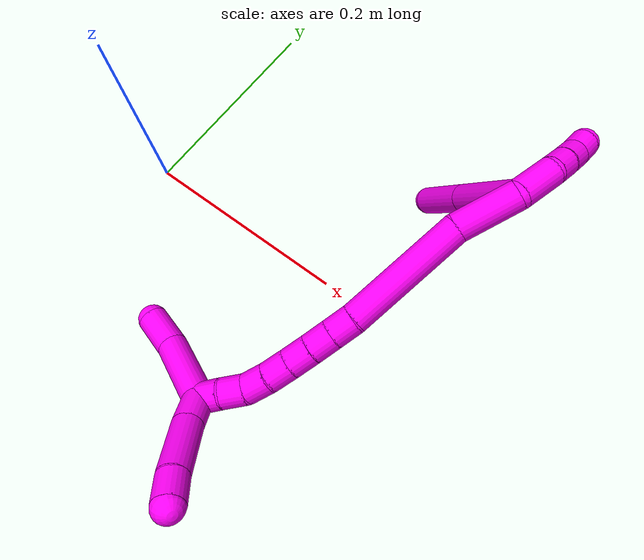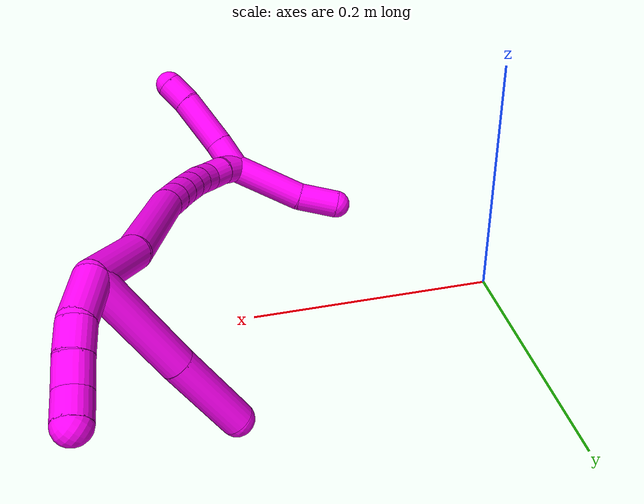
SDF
<sdf version="1.7">
 <world name="default">
  <model name="10">
   <static>0</static>
   <link name="10">
    <collision name="collision-cylinder-e_1_2_8">
     <pose>0.010665 8e-05 -0.040773 -3.13963 0.255831 -3.12632</pose>
     <geometry><cylinder><radius>0.0125</radius><length>0.084289</length></cylinder></geometry>
     <surface>
      <friction><ode><mu>1.16</mu><mu2>1.16</mu2><slip1>0</slip1><slip2>0</slip2></ode></friction>
      <contact><ode><kp>1e+06</kp><kd>1</kd><max_vel>0</max_vel><min_depth>0.001</min_depth></ode></contact>
     </surface>
    </collision>
    <visual name="visual-cylinder-e_1_2_8">
     <pose>0.010665 8e-05 -0.040773 -3.13963 0.255831 -3.12632</pose>
     <geometry><cylinder><radius>0.0125</radius><length>0.084289</length></cylinder></geometry>
     <material><ambient>1 0 0.964706 1</ambient></material>
    </visual>
    <collision name="collision-cylinder-e_2_8_6">
     <pose>0.029182 -0.000834 -0.113433 3.11042 0.241329 2.88591</pose>
     <geometry><cylinder><radius>0.0125</radius><length>0.065711</length></cylinder></geometry>
     <surface>
      <friction><ode><mu>1.16</mu><mu2>1.16</mu2><slip1>0</slip1><slip2>0</slip2></ode></friction>
      <contact><ode><kp>1e+06</kp><kd>1</kd><max_vel>0</max_vel><min_depth>0.001</min_depth></ode></contact>
     </surface>
    </collision>
    <visual name="visual-cylinder-e_2_8_6">
     <pose>0.029182 -0.000834 -0.113433 3.11042 0.241329 2.88591</pose>
     <geometry><cylinder><radius>0.0125</radius><length>0.065711</length></cylinder></geometry>
     <material><ambient>1 0 0.964706 1</ambient></material>
    </visual>
    <collision name="collision-cylinder-e_1_2_9">
     <pose>0.000157 0.018512 -0.001058 -1.62789 0.008461 -0.008958</pose>
     <geometry><cylinder><radius>0.0125</radius><length>0.037086</length></cylinder></geometry>
     <surface>
      <friction><ode><mu>1.16</mu><mu2>1.16</mu2><slip1>0</slip1><slip2>0</slip2></ode></friction>
      <contact><ode><kp>1e+06</kp><kd>1</kd><max_vel>0</max_vel><min_depth>0.001</min_depth></ode></contact>
     </surface>
    </collision>
    <visual name="visual-cylinder-e_1_2_9">
     <pose>0.000157 0.018512 -0.001058 -1.62789 0.008461 -0.008958</pose>
     <geometry><cylinder><radius>0.0125</radius><length>0.037086</length></cylinder></geometry>
     <material><ambient>1 0 0.964706 1</ambient></material>
    </visual>
    <collision name="collision-cylinder-e_2_9_10">
     <pose>0.002102 0.046864 -0.005808 -1.92973 0.168518 -0.242596</pose>
     <geometry><cylinder><radius>0.0125</radius><length>0.02132</length></cylinder></geometry>
     <surface>
      <friction><ode><mu>1.16</mu><mu2>1.16</mu2><slip1>0</slip1><slip2>0</slip2></ode></friction>
      <contact><ode><kp>1e+06</kp><kd>1</kd><max_vel>0</max_vel><min_depth>0.001</min_depth></ode></contact>
     </surface>
    </collision>
    <visual name="visual-cylinder-e_2_9_10">
     <pose>0.002102 0.046864 -0.005808 -1.92973 0.168518 -0.242596</pose>
     <geometry><cylinder><radius>0.0125</radius><length>0.02132</length></cylinder></geometry>
     <material><ambient>1 0 0.964706 1</ambient></material>
    </visual>
    <collision name="collision-cylinder-e_3_10_11">
     <pose>0.006033 0.066227 -0.014084 -2.01941 0.200035 -0.316681</pose>
     <geometry><cylinder><radius>0.0125</radius><length>0.02157</length></cylinder></geometry>
     <surface>
      <friction><ode><mu>1.16</mu><mu2>1.16</mu2><slip1>0</slip1><slip2>0</slip2></ode></friction>
      <contact><ode><kp>1e+06</kp><kd>1</kd><max_vel>0</max_vel><min_depth>0.001</min_depth></ode></contact>
     </surface>
    </collision>
    <visual name="visual-cylinder-e_3_10_11">
     <pose>0.006033 0.066227 -0.014084 -2.01941 0.200035 -0.316681</pose>
     <geometry><cylinder><radius>0.0125</radius><length>0.02157</length></cylinder></geometry>
     <material><ambient>1 0 0.964706 1</ambient></material>
    </visual>
    <collision name="collision-cylinder-e_4_11_5">
     <pose>0.008584 0.085191 -0.021977 -1.90789 0.040757 -0.057464</pose>
     <geometry><cylinder><radius>0.0125</radius><length>0.020024</length></cylinder></geometry>
     <surface>
      <friction><ode><mu>1.16</mu><mu2>1.16</mu2><slip1>0</slip1><slip2>0</slip2></ode></friction>
      <contact><ode><kp>1e+06</kp><kd>1</kd><max_vel>0</max_vel><min_depth>0.001</min_depth></ode></contact>
     </surface>
    </collision>
    <visual name="visual-cylinder-e_4_11_5">
     <pose>0.008584 0.085191 -0.021977 -1.90789 0.040757 -0.057464</pose>
     <geometry><cylinder><radius>0.0125</radius><length>0.020024</length></cylinder></geometry>
     <material><ambient>1 0 0.964706 1</ambient></material>
    </visual>
    <collision name="collision-cylinder-e_1_2_12">
     <pose>0.003143 -0.024612 -0.010454 1.97247 0.117013 0.176577</pose>
     <geometry><cylinder><radius>0.0125</radius><length>0.053849</length></cylinder></geometry>
     <surface>
      <friction><ode><mu>1.16</mu><mu2>1.16</mu2><slip1>0</slip1><slip2>0</slip2></ode></friction>
      <contact><ode><kp>1e+06</kp><kd>1</kd><max_vel>0</max_vel><min_depth>0.001</min_depth></ode></contact>
     </surface>
    </collision>
    <visual name="visual-cylinder-e_1_2_12">
     <pose>0.003143 -0.024612 -0.010454 1.97247 0.117013 0.176577</pose>
     <geometry><cylinder><radius>0.0125</radius><length>0.053849</length></cylinder></geometry>
     <material><ambient>1 0 0.964706 1</ambient></material>
    </visual>
    <collision name="collision-cylinder-e_2_12_13">
     <pose>0.020211 -0.09898 -0.030644 1.76402 0.26804 0.324648</pose>
     <geometry><cylinder><radius>0.0125</radius><length>0.105153</length></cylinder></geometry>
     <surface>
      <friction><ode><mu>1.16</mu><mu2>1.16</mu2><slip1>0</slip1><slip2>0</slip2></ode></friction>
      <contact><ode><kp>1e+06</kp><kd>1</kd><max_vel>0</max_vel><min_depth>0.001</min_depth></ode></contact>
     </surface>
    </collision>
    <visual name="visual-cylinder-e_2_12_13">
     <pose>0.020211 -0.09898 -0.030644 1.76402 0.26804 0.324648</pose>
     <geometry><cylinder><radius>0.0125</radius><length>0.105153</length></cylinder></geometry>
     <material><ambient>1 0 0.964706 1</ambient></material>
    </visual>
    <collision name="collision-cylinder-e_3_13_14">
     <pose>0.036282 -0.158307 -0.043402 1.87666 0.210642 0.286501</pose>
     <geometry><cylinder><radius>0.0125</radius><length>0.020528</length></cylinder></geometry>
     <surface>
      <friction><ode><mu>1.16</mu><mu2>1.16</mu2><slip1>0</slip1><slip2>0</slip2></ode></friction>
      <contact><ode><kp>1e+06</kp><kd>1</kd><max_vel>0</max_vel><min_depth>0.001</min_depth></ode></contact>
     </surface>
    </collision>
    <visual name="visual-cylinder-e_3_13_14">
     <pose>0.036282 -0.158307 -0.043402 1.87666 0.210642 0.286501</pose>
     <geometry><cylinder><radius>0.0125</radius><length>0.020528</length></cylinder></geometry>
     <material><ambient>1 0 0.964706 1</ambient></material>
    </visual>
    <collision name="collision-cylinder-e_4_14_15">
     <pose>0.040475 -0.177234 -0.049339 1.87278 0.205971 0.279063</pose>
     <geometry><cylinder><radius>0.0125</radius><length>0.020023</length></cylinder></geometry>
     <surface>
      <friction><ode><mu>1.16</mu><mu2>1.16</mu2><slip1>0</slip1><slip2>0</slip2></ode></friction>
      <contact><ode><kp>1e+06</kp><kd>1</kd><max_vel>0</max_vel><min_depth>0.001</min_depth></ode></contact>
     </surface>
    </collision>
    <visual name="visual-cylinder-e_4_14_15">
     <pose>0.040475 -0.177234 -0.049339 1.87278 0.205971 0.279063</pose>
     <geometry><cylinder><radius>0.0125</radius><length>0.020023</length></cylinder></geometry>
     <material><ambient>1 0 0.964706 1</ambient></material>
    </visual>
    <collision name="collision-cylinder-e_5_15_16">
     <pose>0.044557 -0.195867 -0.055475 1.90509 0.204209 0.286138</pose>
     <geometry><cylinder><radius>0.0125</radius><length>0.020057</length></cylinder></geometry>
     <surface>
      <friction><ode><mu>1.16</mu><mu2>1.16</mu2><slip1>0</slip1><slip2>0</slip2></ode></friction>
      <contact><ode><kp>1e+06</kp><kd>1</kd><max_vel>0</max_vel><min_depth>0.001</min_depth></ode></contact>
     </surface>
    </collision>
    <visual name="visual-cylinder-e_5_15_16">
     <pose>0.044557 -0.195867 -0.055475 1.90509 0.204209 0.286138</pose>
     <geometry><cylinder><radius>0.0125</radius><length>0.020057</length></cylinder></geometry>
     <material><ambient>1 0 0.964706 1</ambient></material>
    </visual>
    <collision name="collision-cylinder-e_6_16_17">
     <pose>0.048459 -0.214452 -0.062006 1.91236 0.186916 0.264052</pose>
     <geometry><cylinder><radius>0.0125</radius><length>0.020107</length></cylinder></geometry>
     <surface>
      <friction><ode><mu>1.16</mu><mu2>1.16</mu2><slip1>0</slip1><slip2>0</slip2></ode></friction>
      <contact><ode><kp>1e+06</kp><kd>1</kd><max_vel>0</max_vel><min_depth>0.001</min_depth></ode></contact>
     </surface>
    </collision>
    <visual name="visual-cylinder-e_6_16_17">
     <pose>0.048459 -0.214452 -0.062006 1.91236 0.186916 0.264052</pose>
     <geometry><cylinder><radius>0.0125</radius><length>0.020107</length></cylinder></geometry>
     <material><ambient>1 0 0.964706 1</ambient></material>
    </visual>
    <collision name="collision-cylinder-e_7_17_18">
     <pose>0.051815 -0.232788 -0.069686 2.02169 0.147282 0.234291</pose>
     <geometry><cylinder><radius>0.0125</radius><length>0.020282</length></cylinder></geometry>
     <surface>
      <friction><ode><mu>1.16</mu><mu2>1.16</mu2><slip1>0</slip1><slip2>0</slip2></ode></friction>
      <contact><ode><kp>1e+06</kp><kd>1</kd><max_vel>0</max_vel><min_depth>0.001</min_depth></ode></contact>
     </surface>
    </collision>
    <visual name="visual-cylinder-e_7_17_18">
     <pose>0.051815 -0.232788 -0.069686 2.02169 0.147282 0.234291</pose>
     <geometry><cylinder><radius>0.0125</radius><length>0.020282</length></cylinder></geometry>
     <material><ambient>1 0 0.964706 1</ambient></material>
    </visual>
    <collision name="collision-cylinder-e_8_18_19">
     <pose>0.05166 -0.2504 -0.078919 2.08613 -0.165086 -0.281989</pose>
     <geometry><cylinder><radius>0.0125</radius><length>0.02</length></cylinder></geometry>
     <surface>
      <friction><ode><mu>1.16</mu><mu2>1.16</mu2><slip1>0</slip1><slip2>0</slip2></ode></friction>
      <contact><ode><kp>1e+06</kp><kd>1</kd><max_vel>0</max_vel><min_depth>0.001</min_depth></ode></contact>
     </surface>
    </collision>
    <visual name="visual-cylinder-e_8_18_19">
     <pose>0.05166 -0.2504 -0.078919 2.08613 -0.165086 -0.281989</pose>
     <geometry><cylinder><radius>0.0125</radius><length>0.02</length></cylinder></geometry>
     <material><ambient>1 0 0.964706 1</ambient></material>
    </visual>
    <collision name="collision-cylinder-e_9_19_1">
     <pose>0.049492 -0.267091 -0.08961 2.19411 -0.052406 -0.102154</pose>
     <geometry><cylinder><radius>0.0125</radius><length>0.020001</length></cylinder></geometry>
     <surface>
      <friction><ode><mu>1.16</mu><mu2>1.16</mu2><slip1>0</slip1><slip2>0</slip2></ode></friction>
      <contact><ode><kp>1e+06</kp><kd>1</kd><max_vel>0</max_vel><min_depth>0.001</min_depth></ode></contact>
     </surface>
    </collision>
    <visual name="visual-cylinder-e_9_19_1">
     <pose>0.049492 -0.267091 -0.08961 2.19411 -0.052406 -0.102154</pose>
     <geometry><cylinder><radius>0.0125</radius><length>0.020001</length></cylinder></geometry>
     <material><ambient>1 0 0.964706 1</ambient></material>
    </visual>
    <collision name="collision-cylinder-e_1_1_20">
     <pose>0.038468 -0.273061 -0.125833 -3.07133 -0.331893 2.7279</pose>
     <geometry><cylinder><radius>0.0125</radius><length>0.064456</length></cylinder></geometry>
     <surface>
      <friction><ode><mu>1.16</mu><mu2>1.16</mu2><slip1>0</slip1><slip2>0</slip2></ode></friction>
      <contact><ode><kp>1e+06</kp><kd>1</kd><max_vel>0</max_vel><min_depth>0.001</min_depth></ode></contact>
     </surface>
    </collision>
    <visual name="visual-cylinder-e_1_1_20">
     <pose>0.038468 -0.273061 -0.125833 -3.07133 -0.331893 2.7279</pose>
     <geometry><cylinder><radius>0.0125</radius><length>0.064456</length></cylinder></geometry>
     <material><ambient>1 0 0.964706 1</ambient></material>
    </visual>
    <collision name="collision-cylinder-e_2_20_4">
     <pose>0.019086 -0.271757 -0.171599 3.08734 -0.523252 -2.9396</pose>
     <geometry><cylinder><radius>0.0125</radius><length>0.035544</length></cylinder></geometry>
     <surface>
      <friction><ode><mu>1.16</mu><mu2>1.16</mu2><slip1>0</slip1><slip2>0</slip2></ode></friction>
      <contact><ode><kp>1e+06</kp><kd>1</kd><max_vel>0</max_vel><min_depth>0.001</min_depth></ode></contact>
     </surface>
    </collision>
    <visual name="visual-cylinder-e_2_20_4">
     <pose>0.019086 -0.271757 -0.171599 3.08734 -0.523252 -2.9396</pose>
     <geometry><cylinder><radius>0.0125</radius><length>0.035544</length></cylinder></geometry>
     <material><ambient>1 0 0.964706 1</ambient></material>
    </visual>
    <collision name="collision-cylinder-e_1_1_21">
     <pose>0.049384 -0.283486 -0.084268 0.638227 0.029878 0.009873</pose>
     <geometry><cylinder><radius>0.0125</radius><length>0.027829</length></cylinder></geometry>
     <surface>
      <friction><ode><mu>1.16</mu><mu2>1.16</mu2><slip1>0</slip1><slip2>0</slip2></ode></friction>
      <contact><ode><kp>1e+06</kp><kd>1</kd><max_vel>0</max_vel><min_depth>0.001</min_depth></ode></contact>
     </surface>
    </collision>
    <visual name="visual-cylinder-e_1_1_21">
     <pose>0.049384 -0.283486 -0.084268 0.638227 0.029878 0.009873</pose>
     <geometry><cylinder><radius>0.0125</radius><length>0.027829</length></cylinder></geometry>
     <material><ambient>1 0 0.964706 1</ambient></material>
    </visual>
    <collision name="collision-cylinder-e_2_21_22">
     <pose>0.050331 -0.303876 -0.051798 0.51672 0.021676 0.005729</pose>
     <geometry><cylinder><radius>0.0125</radius><length>0.049008</length></cylinder></geometry>
     <surface>
      <friction><ode><mu>1.16</mu><mu2>1.16</mu2><slip1>0</slip1><slip2>0</slip2></ode></friction>
      <contact><ode><kp>1e+06</kp><kd>1</kd><max_vel>0</max_vel><min_depth>0.001</min_depth></ode></contact>
     </surface>
    </collision>
    <visual name="visual-cylinder-e_2_21_22">
     <pose>0.050331 -0.303876 -0.051798 0.51672 0.021676 0.005729</pose>
     <geometry><cylinder><radius>0.0125</radius><length>0.049008</length></cylinder></geometry>
     <material><ambient>1 0 0.964706 1</ambient></material>
    </visual>
    <collision name="collision-cylinder-e_3_22_3">
     <pose>0.052484 -0.321211 -0.020294 0.473866 0.140534 0.033987</pose>
     <geometry><cylinder><radius>0.0125</radius><length>0.023163</length></cylinder></geometry>
     <surface>
      <friction><ode><mu>1.16</mu><mu2>1.16</mu2><slip1>0</slip1><slip2>0</slip2></ode></friction>
      <contact><ode><kp>1e+06</kp><kd>1</kd><max_vel>0</max_vel><min_depth>0.001</min_depth></ode></contact>
     </surface>
    </collision>
    <visual name="visual-cylinder-e_3_22_3">
     <pose>0.052484 -0.321211 -0.020294 0.473866 0.140534 0.033987</pose>
     <geometry><cylinder><radius>0.0125</radius><length>0.023163</length></cylinder></geometry>
     <material><ambient>1 0 0.964706 1</ambient></material>
    </visual>
    <collision name="collision-sphere-3">
     <pose>0.054107 -0.326444 -0.010091 0 -0 0</pose>
     <geometry><sphere><radius>0.0125</radius></sphere></geometry>
     <surface>
      <friction><ode><mu>1.16</mu><mu2>1.16</mu2><slip1>0</slip1><slip2>0</slip2></ode></friction>
      <contact><ode><kp>1e+06</kp><kd>1</kd><max_vel>0</max_vel><min_depth>0.001</min_depth></ode></contact>
     </surface>
    </collision>
    <visual name="visual-sphere-3">
     <pose>0.054107 -0.326444 -0.010091 0 -0 0</pose>
     <geometry><sphere><radius>0.0125</radius></sphere></geometry>
     <material><ambient>1 0 0.964706 1</ambient></material>
    </visual>
    <collision name="collision-sphere-22">
     <pose>0.050862 -0.315978 -0.030498 0 -0 0</pose>
     <geometry><sphere><radius>0.0125</radius></sphere></geometry>
     <surface>
      <friction><ode><mu>1.16</mu><mu2>1.16</mu2><slip1>0</slip1><slip2>0</slip2></ode></friction>
      <contact><ode><kp>1e+06</kp><kd>1</kd><max_vel>0</max_vel><min_depth>0.001</min_depth></ode></contact>
     </surface>
    </collision>
    <visual name="visual-sphere-22">
     <pose>0.050862 -0.315978 -0.030498 0 -0 0</pose>
     <geometry><sphere><radius>0.0125</radius></sphere></geometry>
     <material><ambient>1 0 0.964706 1</ambient></material>
    </visual>
    <collision name="collision-sphere-21">
     <pose>0.0498 -0.291773 -0.073098 0 -0 0</pose>
     <geometry><sphere><radius>0.0125</radius></sphere></geometry>
     <surface>
      <friction><ode><mu>1.16</mu><mu2>1.16</mu2><slip1>0</slip1><slip2>0</slip2></ode></friction>
      <contact><ode><kp>1e+06</kp><kd>1</kd><max_vel>0</max_vel><min_depth>0.001</min_depth></ode></contact>
     </surface>
    </collision>
    <visual name="visual-sphere-21">
     <pose>0.0498 -0.291773 -0.073098 0 -0 0</pose>
     <geometry><sphere><radius>0.0125</radius></sphere></geometry>
     <material><ambient>1 0 0.964706 1</ambient></material>
    </visual>
    <collision name="collision-sphere-4">
     <pose>0.010205 -0.272591 -0.18697 0 -0 0</pose>
     <geometry><sphere><radius>0.0125</radius></sphere></geometry>
     <surface>
      <friction><ode><mu>1.16</mu><mu2>1.16</mu2><slip1>0</slip1><slip2>0</slip2></ode></friction>
      <contact><ode><kp>1e+06</kp><kd>1</kd><max_vel>0</max_vel><min_depth>0.001</min_depth></ode></contact>
     </surface>
    </collision>
    <visual name="visual-sphere-4">
     <pose>0.010205 -0.272591 -0.18697 0 -0 0</pose>
     <geometry><sphere><radius>0.0125</radius></sphere></geometry>
     <material><ambient>1 0 0.964706 1</ambient></material>
    </visual>
    <collision name="collision-sphere-20">
     <pose>0.027967 -0.270922 -0.156227 0 -0 0</pose>
     <geometry><sphere><radius>0.0125</radius></sphere></geometry>
     <surface>
      <friction><ode><mu>1.16</mu><mu2>1.16</mu2><slip1>0</slip1><slip2>0</slip2></ode></friction>
      <contact><ode><kp>1e+06</kp><kd>1</kd><max_vel>0</max_vel><min_depth>0.001</min_depth></ode></contact>
     </surface>
    </collision>
    <visual name="visual-sphere-20">
     <pose>0.027967 -0.270922 -0.156227 0 -0 0</pose>
     <geometry><sphere><radius>0.0125</radius></sphere></geometry>
     <material><ambient>1 0 0.964706 1</ambient></material>
    </visual>
    <collision name="collision-sphere-11">
     <pose>0.008176 0.075751 -0.018668 0 -0 0</pose>
     <geometry><sphere><radius>0.0125</radius></sphere></geometry>
     <surface>
      <friction><ode><mu>1.16</mu><mu2>1.16</mu2><slip1>0</slip1><slip2>0</slip2></ode></friction>
      <contact><ode><kp>1e+06</kp><kd>1</kd><max_vel>0</max_vel><min_depth>0.001</min_depth></ode></contact>
     </surface>
    </collision>
    <visual name="visual-sphere-11">
     <pose>0.008176 0.075751 -0.018668 0 -0 0</pose>
     <geometry><sphere><radius>0.0125</radius></sphere></geometry>
     <material><ambient>1 0 0.964706 1</ambient></material>
    </visual>
    <collision name="collision-sphere-10">
     <pose>0.00389 0.056703 -0.009499 0 -0 0</pose>
     <geometry><sphere><radius>0.0125</radius></sphere></geometry>
     <surface>
      <friction><ode><mu>1.16</mu><mu2>1.16</mu2><slip1>0</slip1><slip2>0</slip2></ode></friction>
      <contact><ode><kp>1e+06</kp><kd>1</kd><max_vel>0</max_vel><min_depth>0.001</min_depth></ode></contact>
     </surface>
    </collision>
    <visual name="visual-sphere-10">
     <pose>0.00389 0.056703 -0.009499 0 -0 0</pose>
     <geometry><sphere><radius>0.0125</radius></sphere></geometry>
     <material><ambient>1 0 0.964706 1</ambient></material>
    </visual>
    <collision name="collision-sphere-6">
     <pose>0.037034 -0.001828 -0.145321 0 -0 0</pose>
     <geometry><sphere><radius>0.0125</radius></sphere></geometry>
     <surface>
      <friction><ode><mu>1.16</mu><mu2>1.16</mu2><slip1>0</slip1><slip2>0</slip2></ode></friction>
      <contact><ode><kp>1e+06</kp><kd>1</kd><max_vel>0</max_vel><min_depth>0.001</min_depth></ode></contact>
     </surface>
    </collision>
    <visual name="visual-sphere-6">
     <pose>0.037034 -0.001828 -0.145321 0 -0 0</pose>
     <geometry><sphere><radius>0.0125</radius></sphere></geometry>
     <material><ambient>1 0 0.964706 1</ambient></material>
    </visual>
    <collision name="collision-sphere-9">
     <pose>0.000314 0.037025 -0.002116 0 -0 0</pose>
     <geometry><sphere><radius>0.0125</radius></sphere></geometry>
     <surface>
      <friction><ode><mu>1.16</mu><mu2>1.16</mu2><slip1>0</slip1><slip2>0</slip2></ode></friction>
      <contact><ode><kp>1e+06</kp><kd>1</kd><max_vel>0</max_vel><min_depth>0.001</min_depth></ode></contact>
     </surface>
    </collision>
    <visual name="visual-sphere-9">
     <pose>0.000314 0.037025 -0.002116 0 -0 0</pose>
     <geometry><sphere><radius>0.0125</radius></sphere></geometry>
     <material><ambient>1 0 0.964706 1</ambient></material>
    </visual>
    <collision name="collision-sphere-2">
     <geometry><sphere><radius>0.0125</radius></sphere></geometry>
     <surface>
      <friction><ode><mu>1.16</mu><mu2>1.16</mu2><slip1>0</slip1><slip2>0</slip2></ode></friction>
      <contact><ode><kp>1e+06</kp><kd>1</kd><max_vel>0</max_vel><min_depth>0.001</min_depth></ode></contact>
     </surface>
    </collision>
    <visual name="visual-sphere-2">
     <geometry><sphere><radius>0.0125</radius></sphere></geometry>
     <material><ambient>1 0 0.964706 1</ambient></material>
    </visual>
    <collision name="collision-sphere-19">
     <pose>0.050016 -0.258983 -0.08378 0 -0 0</pose>
     <geometry><sphere><radius>0.0125</radius></sphere></geometry>
     <surface>
      <friction><ode><mu>1.16</mu><mu2>1.16</mu2><slip1>0</slip1><slip2>0</slip2></ode></friction>
      <contact><ode><kp>1e+06</kp><kd>1</kd><max_vel>0</max_vel><min_depth>0.001</min_depth></ode></contact>
     </surface>
    </collision>
    <visual name="visual-sphere-19">
     <pose>0.050016 -0.258983 -0.08378 0 -0 0</pose>
     <geometry><sphere><radius>0.0125</radius></sphere></geometry>
     <material><ambient>1 0 0.964706 1</ambient></material>
    </visual>
    <collision name="collision-sphere-8">
     <pose>0.021329 0.00016 -0.081545 0 -0 0</pose>
     <geometry><sphere><radius>0.0125</radius></sphere></geometry>
     <surface>
      <friction><ode><mu>1.16</mu><mu2>1.16</mu2><slip1>0</slip1><slip2>0</slip2></ode></friction>
      <contact><ode><kp>1e+06</kp><kd>1</kd><max_vel>0</max_vel><min_depth>0.001</min_depth></ode></contact>
     </surface>
    </collision>
    <visual name="visual-sphere-8">
     <pose>0.021329 0.00016 -0.081545 0 -0 0</pose>
     <geometry><sphere><radius>0.0125</radius></sphere></geometry>
     <material><ambient>1 0 0.964706 1</ambient></material>
    </visual>
    <collision name="collision-sphere-5">
     <pose>0.008991 0.094632 -0.025286 0 -0 0</pose>
     <geometry><sphere><radius>0.0125</radius></sphere></geometry>
     <surface>
      <friction><ode><mu>1.16</mu><mu2>1.16</mu2><slip1>0</slip1><slip2>0</slip2></ode></friction>
      <contact><ode><kp>1e+06</kp><kd>1</kd><max_vel>0</max_vel><min_depth>0.001</min_depth></ode></contact>
     </surface>
    </collision>
    <visual name="visual-sphere-5">
     <pose>0.008991 0.094632 -0.025286 0 -0 0</pose>
     <geometry><sphere><radius>0.0125</radius></sphere></geometry>
     <material><ambient>1 0 0.964706 1</ambient></material>
    </visual>
    <collision name="collision-sphere-12">
     <pose>0.006287 -0.049224 -0.020909 0 -0 0</pose>
     <geometry><sphere><radius>0.0125</radius></sphere></geometry>
     <surface>
      <friction><ode><mu>1.16</mu><mu2>1.16</mu2><slip1>0</slip1><slip2>0</slip2></ode></friction>
      <contact><ode><kp>1e+06</kp><kd>1</kd><max_vel>0</max_vel><min_depth>0.001</min_depth></ode></contact>
     </surface>
    </collision>
    <visual name="visual-sphere-12">
     <pose>0.006287 -0.049224 -0.020909 0 -0 0</pose>
     <geometry><sphere><radius>0.0125</radius></sphere></geometry>
     <material><ambient>1 0 0.964706 1</ambient></material>
    </visual>
    <collision name="collision-sphere-13">
     <pose>0.034136 -0.148736 -0.040379 0 -0 0</pose>
     <geometry><sphere><radius>0.0125</radius></sphere></geometry>
     <surface>
      <friction><ode><mu>1.16</mu><mu2>1.16</mu2><slip1>0</slip1><slip2>0</slip2></ode></friction>
      <contact><ode><kp>1e+06</kp><kd>1</kd><max_vel>0</max_vel><min_depth>0.001</min_depth></ode></contact>
     </surface>
    </collision>
    <visual name="visual-sphere-13">
     <pose>0.034136 -0.148736 -0.040379 0 -0 0</pose>
     <geometry><sphere><radius>0.0125</radius></sphere></geometry>
     <material><ambient>1 0 0.964706 1</ambient></material>
    </visual>
    <collision name="collision-sphere-14">
     <pose>0.038428 -0.167878 -0.046424 0 -0 0</pose>
     <geometry><sphere><radius>0.0125</radius></sphere></geometry>
     <surface>
      <friction><ode><mu>1.16</mu><mu2>1.16</mu2><slip1>0</slip1><slip2>0</slip2></ode></friction>
      <contact><ode><kp>1e+06</kp><kd>1</kd><max_vel>0</max_vel><min_depth>0.001</min_depth></ode></contact>
     </surface>
    </collision>
    <visual name="visual-sphere-14">
     <pose>0.038428 -0.167878 -0.046424 0 -0 0</pose>
     <geometry><sphere><radius>0.0125</radius></sphere></geometry>
     <material><ambient>1 0 0.964706 1</ambient></material>
    </visual>
    <collision name="collision-sphere-15">
     <pose>0.042523 -0.186591 -0.052253 0 -0 0</pose>
     <geometry><sphere><radius>0.0125</radius></sphere></geometry>
     <surface>
      <friction><ode><mu>1.16</mu><mu2>1.16</mu2><slip1>0</slip1><slip2>0</slip2></ode></friction>
      <contact><ode><kp>1e+06</kp><kd>1</kd><max_vel>0</max_vel><min_depth>0.001</min_depth></ode></contact>
     </surface>
    </collision>
    <visual name="visual-sphere-15">
     <pose>0.042523 -0.186591 -0.052253 0 -0 0</pose>
     <geometry><sphere><radius>0.0125</radius></sphere></geometry>
     <material><ambient>1 0 0.964706 1</ambient></material>
    </visual>
    <collision name="collision-sphere-16">
     <pose>0.04659 -0.205144 -0.058697 0 -0 0</pose>
     <geometry><sphere><radius>0.0125</radius></sphere></geometry>
     <surface>
      <friction><ode><mu>1.16</mu><mu2>1.16</mu2><slip1>0</slip1><slip2>0</slip2></ode></friction>
      <contact><ode><kp>1e+06</kp><kd>1</kd><max_vel>0</max_vel><min_depth>0.001</min_depth></ode></contact>
     </surface>
    </collision>
    <visual name="visual-sphere-16">
     <pose>0.04659 -0.205144 -0.058697 0 -0 0</pose>
     <geometry><sphere><radius>0.0125</radius></sphere></geometry>
     <material><ambient>1 0 0.964706 1</ambient></material>
    </visual>
    <collision name="collision-sphere-17">
     <pose>0.050327 -0.223759 -0.065315 0 -0 0</pose>
     <geometry><sphere><radius>0.0125</radius></sphere></geometry>
     <surface>
      <friction><ode><mu>1.16</mu><mu2>1.16</mu2><slip1>0</slip1><slip2>0</slip2></ode></friction>
      <contact><ode><kp>1e+06</kp><kd>1</kd><max_vel>0</max_vel><min_depth>0.001</min_depth></ode></contact>
     </surface>
    </collision>
    <visual name="visual-sphere-17">
     <pose>0.050327 -0.223759 -0.065315 0 -0 0</pose>
     <geometry><sphere><radius>0.0125</radius></sphere></geometry>
     <material><ambient>1 0 0.964706 1</ambient></material>
    </visual>
    <collision name="collision-sphere-18">
     <pose>0.053303 -0.241816 -0.074057 0 -0 0</pose>
     <geometry><sphere><radius>0.0125</radius></sphere></geometry>
     <surface>
      <friction><ode><mu>1.16</mu><mu2>1.16</mu2><slip1>0</slip1><slip2>0</slip2></ode></friction>
      <contact><ode><kp>1e+06</kp><kd>1</kd><max_vel>0</max_vel><min_depth>0.001</min_depth></ode></contact>
     </surface>
    </collision>
    <visual name="visual-sphere-18">
     <pose>0.053303 -0.241816 -0.074057 0 -0 0</pose>
     <geometry><sphere><radius>0.0125</radius></sphere></geometry>
     <material><ambient>1 0 0.964706 1</ambient></material>
    </visual>
    <collision name="collision-sphere-1">
     <pose>0.048969 -0.2752 -0.095439 0 -0 0</pose>
     <geometry><sphere><radius>0.0125</radius></sphere></geometry>
     <surface>
      <friction><ode><mu>1.16</mu><mu2>1.16</mu2><slip1>0</slip1><slip2>0</slip2></ode></friction>
      <contact><ode><kp>1e+06</kp><kd>1</kd><max_vel>0</max_vel><min_depth>0.001</min_depth></ode></contact>
     </surface>
    </collision>
    <visual name="visual-sphere-1">
     <pose>0.048969 -0.2752 -0.095439 0 -0 0</pose>
     <geometry><sphere><radius>0.0125</radius></sphere></geometry>
     <material><ambient>1 0 0.964706 1</ambient></material>
    </visual>
    <inertial>
     <pose>0.0269 -0.126071 -0.058892 0 -0 0</pose>
     <mass>0.75</mass>
     <inertia><ixx>9.5e-05</ixx><ixy>0</ixy><ixz>0</ixz><iyy>0.00013</iyy><iyz>0</iyz><izz>5.5e-05</izz></inertia>
    </inertial>
   </link>
   <pose>0.31067 0.108766 0.138278 -0.108292 0.804648 -0.391175</pose>
  </model>
 </world>
</sdf>
